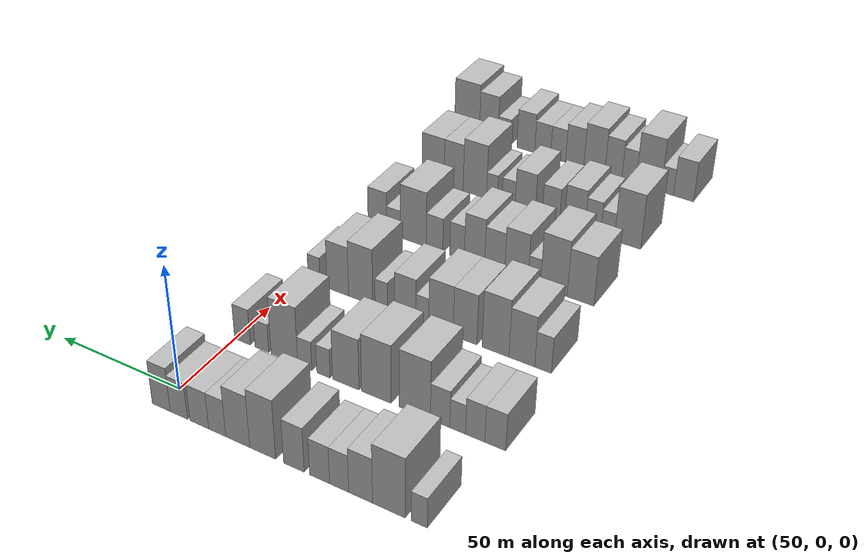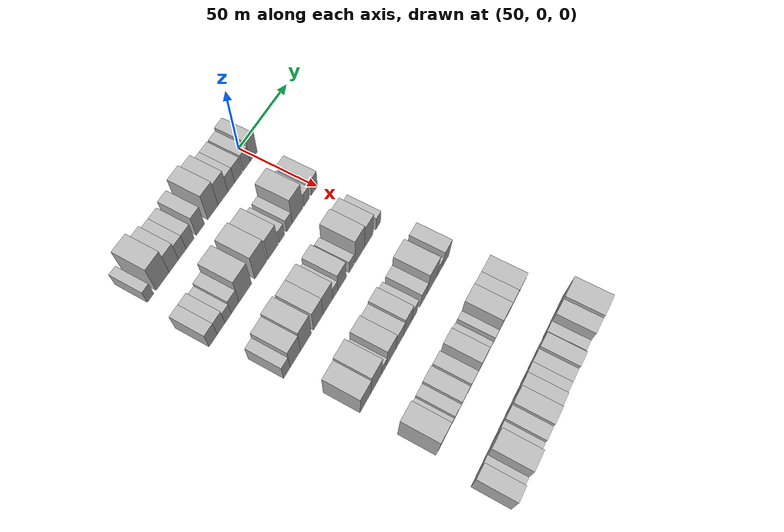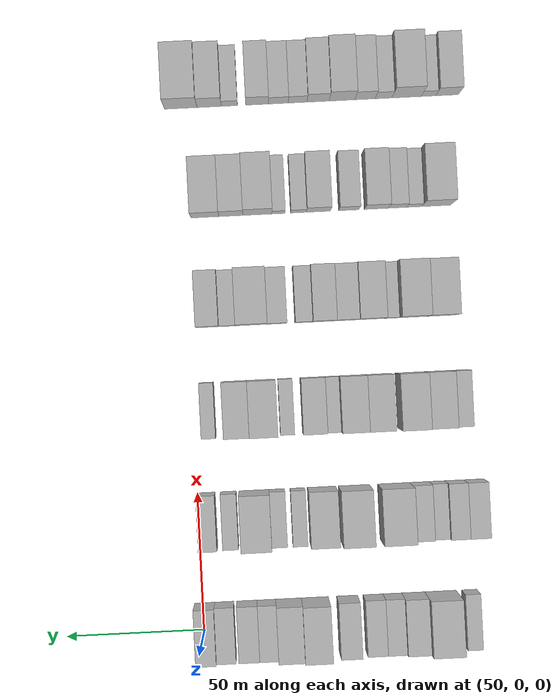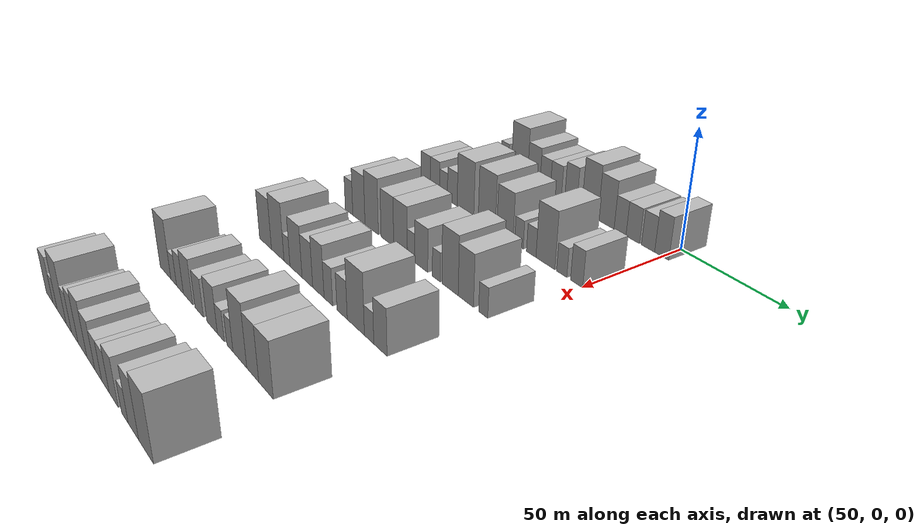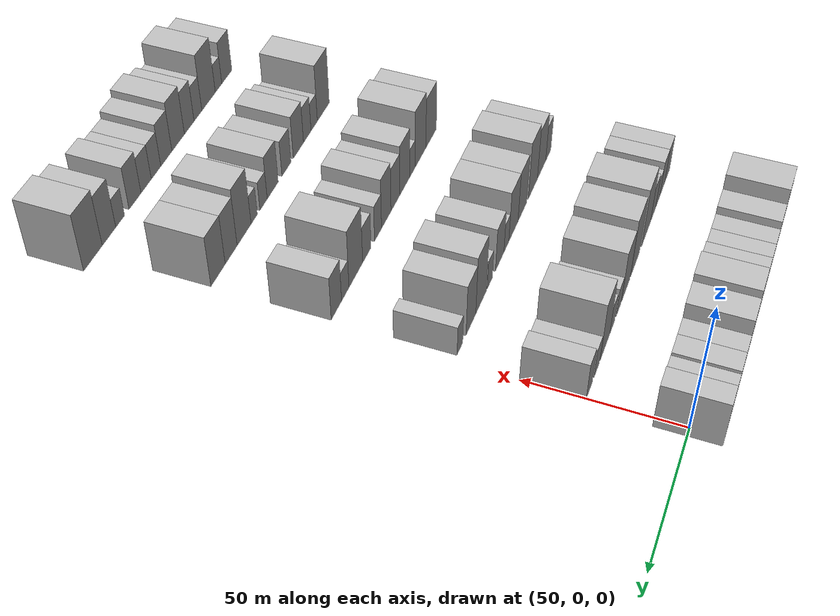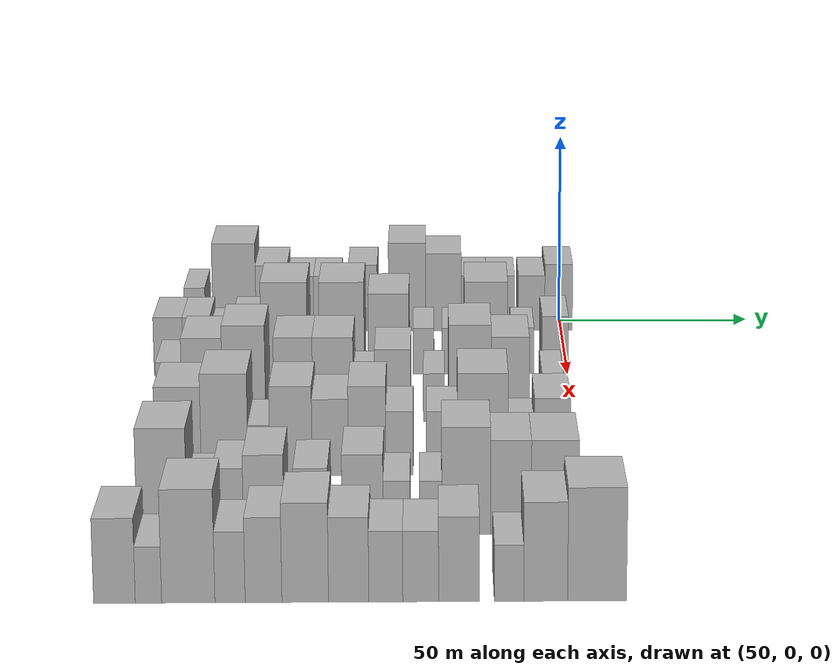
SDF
<sdf version="1.6">
 <world name="default">
  <model name="building_53">
   <static>1</static>
   <pose>50.0000 -96.8227 0 0.000000 0.000000 0.000000</pose>
   <link name="link">
    <pose>0 0 6.00 0 0 0</pose>
    <collision name="collision"><geometry><box><size>20.0000 5.5062 12.0000</size></box></geometry></collision>
    <visual name="visual">
     <cast_shadows>0</cast_shadows>
     <geometry><box><size>20.0000 5.5062 12.0000</size></box></geometry>
     <material>
      <script>
       <uri>model://HANNAS_wall/materials/scripts</uri>
       <uri>model://HANNAS_wall/materials/textures</uri>
       <name>vrc/HANNAS_wall</name>
      </script>
     </material>
    </visual>
   </link>
  </model>
  <model name="building_54">
   <static>1</static>
   <pose>50.0000 -86.3731 0 0.000000 0.000000 0.000000</pose>
   <link name="link">
    <pose>0 0 12.00 0 0 0</pose>
    <collision name="collision"><geometry><box><size>20.0000 11.3929 24.0000</size></box></geometry></collision>
    <visual name="visual">
     <cast_shadows>0</cast_shadows>
     <geometry><box><size>20.0000 11.3929 24.0000</size></box></geometry>
     <material>
      <script>
       <uri>model://HANNAS_wall/materials/scripts</uri>
       <uri>model://HANNAS_wall/materials/textures</uri>
       <name>vrc/HANNAS_wall</name>
      </script>
     </material>
    </visual>
   </link>
  </model>
  <model name="building_55">
   <static>1</static>
   <pose>50.0000 -76.4783 0 0.000000 0.000000 0.000000</pose>
   <link name="link">
    <pose>0 0 9.00 0 0 0</pose>
    <collision name="collision"><geometry><box><size>20.0000 8.3968 18.0000</size></box></geometry></collision>
    <visual name="visual">
     <cast_shadows>0</cast_shadows>
     <geometry><box><size>20.0000 8.3968 18.0000</size></box></geometry>
     <material>
      <script>
       <uri>model://HANNAS_wall/materials/scripts</uri>
       <uri>model://HANNAS_wall/materials/textures</uri>
       <name>vrc/HANNAS_wall</name>
      </script>
     </material>
    </visual>
   </link>
  </model>
  <model name="building_56">
   <static>1</static>
   <pose>50.0000 -68.8575 0 0.000000 0.000000 0.000000</pose>
   <link name="link">
    <pose>0 0 7.50 0 0 0</pose>
    <collision name="collision"><geometry><box><size>20.0000 6.8449 15.0000</size></box></geometry></collision>
    <visual name="visual">
     <cast_shadows>0</cast_shadows>
     <geometry><box><size>20.0000 6.8449 15.0000</size></box></geometry>
     <material>
      <script>
       <uri>model://HANNAS_wall/materials/scripts</uri>
       <uri>model://HANNAS_wall/materials/textures</uri>
       <name>vrc/HANNAS_wall</name>
      </script>
     </material>
    </visual>
   </link>
  </model>
  <model name="building_57">
   <static>1</static>
   <pose>50.0000 -61.8239 0 0.000000 0.000000 0.000000</pose>
   <link name="link">
    <pose>0 0 7.50 0 0 0</pose>
    <collision name="collision"><geometry><box><size>20.0000 7.2223 15.0000</size></box></geometry></collision>
    <visual name="visual">
     <cast_shadows>0</cast_shadows>
     <geometry><box><size>20.0000 7.2223 15.0000</size></box></geometry>
     <material>
      <script>
       <uri>model://HANNAS_wall/materials/scripts</uri>
       <uri>model://HANNAS_wall/materials/textures</uri>
       <name>vrc/HANNAS_wall</name>
      </script>
     </material>
    </visual>
   </link>
  </model>
  <model name="building_58">
   <static>1</static>
   <pose>50.0000 -52.3916 0 0.000000 0.000000 0.000000</pose>
   <link name="link">
    <pose>0 0 9.00 0 0 0</pose>
    <collision name="collision"><geometry><box><size>20.0000 7.6421 18.0000</size></box></geometry></collision>
    <visual name="visual">
     <cast_shadows>0</cast_shadows>
     <geometry><box><size>20.0000 7.6421 18.0000</size></box></geometry>
     <material>
      <script>
       <uri>model://HANNAS_wall/materials/scripts</uri>
       <uri>model://HANNAS_wall/materials/textures</uri>
       <name>vrc/HANNAS_wall</name>
      </script>
     </material>
    </visual>
   </link>
  </model>
  <model name="building_59">
   <static>1</static>
   <pose>50.0000 -40.6573 0 0.000000 0.000000 0.000000</pose>
   <link name="link">
    <pose>0 0 12.00 0 0 0</pose>
    <collision name="collision"><geometry><box><size>20.0000 9.8266 24.0000</size></box></geometry></collision>
    <visual name="visual">
     <cast_shadows>0</cast_shadows>
     <geometry><box><size>20.0000 9.8266 24.0000</size></box></geometry>
     <material>
      <script>
       <uri>model://HANNAS_wall/materials/scripts</uri>
       <uri>model://HANNAS_wall/materials/textures</uri>
       <name>vrc/HANNAS_wall</name>
      </script>
     </material>
    </visual>
   </link>
  </model>
  <model name="building_60">
   <static>1</static>
   <pose>50.0000 -31.0826 0 0.000000 0.000000 0.000000</pose>
   <link name="link">
    <pose>0 0 10.50 0 0 0</pose>
    <collision name="collision"><geometry><box><size>20.0000 9.3229 21.0000</size></box></geometry></collision>
    <visual name="visual">
     <cast_shadows>0</cast_shadows>
     <geometry><box><size>20.0000 9.3229 21.0000</size></box></geometry>
     <material>
      <script>
       <uri>model://HANNAS_wall/materials/scripts</uri>
       <uri>model://HANNAS_wall/materials/textures</uri>
       <name>vrc/HANNAS_wall</name>
      </script>
     </material>
    </visual>
   </link>
  </model>
  <model name="building_61">
   <static>1</static>
   <pose>50.0000 -23.0632 0 0.000000 0.000000 0.000000</pose>
   <link name="link">
    <pose>0 0 7.50 0 0 0</pose>
    <collision name="collision"><geometry><box><size>20.0000 6.7157 15.0000</size></box></geometry></collision>
    <visual name="visual">
     <cast_shadows>0</cast_shadows>
     <geometry><box><size>20.0000 6.7157 15.0000</size></box></geometry>
     <material>
      <script>
       <uri>model://HANNAS_wall/materials/scripts</uri>
       <uri>model://HANNAS_wall/materials/textures</uri>
       <name>vrc/HANNAS_wall</name>
      </script>
     </material>
    </visual>
   </link>
  </model>
  <model name="building_62">
   <static>1</static>
   <pose>50.0000 -15.9845 0 0.000000 0.000000 0.000000</pose>
   <link name="link">
    <pose>0 0 7.50 0 0 0</pose>
    <collision name="collision"><geometry><box><size>20.0000 7.4417 15.0000</size></box></geometry></collision>
    <visual name="visual">
     <cast_shadows>0</cast_shadows>
     <geometry><box><size>20.0000 7.4417 15.0000</size></box></geometry>
     <material>
      <script>
       <uri>model://HANNAS_wall/materials/scripts</uri>
       <uri>model://HANNAS_wall/materials/textures</uri>
       <name>vrc/HANNAS_wall</name>
      </script>
     </material>
    </visual>
   </link>
  </model>
  <model name="building_63">
   <static>1</static>
   <pose>50.0000 -7.7758 0 0.000000 0.000000 0.000000</pose>
   <link name="link">
    <pose>0 0 7.50 0 0 0</pose>
    <collision name="collision"><geometry><box><size>20.0000 6.9758 15.0000</size></box></geometry></collision>
    <visual name="visual">
     <cast_shadows>0</cast_shadows>
     <geometry><box><size>20.0000 6.9758 15.0000</size></box></geometry>
     <material>
      <script>
       <uri>model://HANNAS_wall/materials/scripts</uri>
       <uri>model://HANNAS_wall/materials/textures</uri>
       <name>vrc/HANNAS_wall</name>
      </script>
     </material>
    </visual>
   </link>
  </model>
  <model name="building_64">
   <static>1</static>
   <pose>50.0000 -0.6182 0 0.000000 0.000000 0.000000</pose>
   <link name="link">
    <pose>0 0 9.00 0 0 0</pose>
    <collision name="collision"><geometry><box><size>20.0000 7.3394 18.0000</size></box></geometry></collision>
    <visual name="visual">
     <cast_shadows>0</cast_shadows>
     <geometry><box><size>20.0000 7.3394 18.0000</size></box></geometry>
     <material>
      <script>
       <uri>model://HANNAS_wall/materials/scripts</uri>
       <uri>model://HANNAS_wall/materials/textures</uri>
       <name>vrc/HANNAS_wall</name>
      </script>
     </material>
    </visual>
   </link>
  </model>
  <model name="building_191">
   <static>1</static>
   <pose>90.0000 -100.3961 0 0.000000 0.000000 0.000000</pose>
   <link name="link">
    <pose>0 0 7.50 0 0 0</pose>
    <collision name="collision"><geometry><box><size>20.0000 7.2936 15.0000</size></box></geometry></collision>
    <visual name="visual">
     <cast_shadows>0</cast_shadows>
     <geometry><box><size>20.0000 7.2936 15.0000</size></box></geometry>
     <material>
      <script>
       <uri>model://HANNAS_wall/materials/scripts</uri>
       <uri>model://HANNAS_wall/materials/textures</uri>
       <name>vrc/HANNAS_wall</name>
      </script>
     </material>
    </visual>
   </link>
  </model>
  <model name="building_192">
   <static>1</static>
   <pose>90.0000 -93.2892 0 0.000000 0.000000 0.000000</pose>
   <link name="link">
    <pose>0 0 7.50 0 0 0</pose>
    <collision name="collision"><geometry><box><size>20.0000 6.9203 15.0000</size></box></geometry></collision>
    <visual name="visual">
     <cast_shadows>0</cast_shadows>
     <geometry><box><size>20.0000 6.9203 15.0000</size></box></geometry>
     <material>
      <script>
       <uri>model://HANNAS_wall/materials/scripts</uri>
       <uri>model://HANNAS_wall/materials/textures</uri>
       <name>vrc/HANNAS_wall</name>
      </script>
     </material>
    </visual>
   </link>
  </model>
  <model name="building_193">
   <static>1</static>
   <pose>90.0000 -86.9878 0 0.000000 0.000000 0.000000</pose>
   <link name="link">
    <pose>0 0 6.00 0 0 0</pose>
    <collision name="collision"><geometry><box><size>20.0000 5.6826 12.0000</size></box></geometry></collision>
    <visual name="visual">
     <cast_shadows>0</cast_shadows>
     <geometry><box><size>20.0000 5.6826 12.0000</size></box></geometry>
     <material>
      <script>
       <uri>model://HANNAS_wall/materials/scripts</uri>
       <uri>model://HANNAS_wall/materials/textures</uri>
       <name>vrc/HANNAS_wall</name>
      </script>
     </material>
    </visual>
   </link>
  </model>
  <model name="building_194">
   <static>1</static>
   <pose>90.0000 -80.6133 0 0.000000 0.000000 0.000000</pose>
   <link name="link">
    <pose>0 0 7.50 0 0 0</pose>
    <collision name="collision"><geometry><box><size>20.0000 7.0664 15.0000</size></box></geometry></collision>
    <visual name="visual">
     <cast_shadows>0</cast_shadows>
     <geometry><box><size>20.0000 7.0664 15.0000</size></box></geometry>
     <material>
      <script>
       <uri>model://HANNAS_wall/materials/scripts</uri>
       <uri>model://HANNAS_wall/materials/textures</uri>
       <name>vrc/HANNAS_wall</name>
      </script>
     </material>
    </visual>
   </link>
  </model>
  <model name="building_195">
   <static>1</static>
   <pose>90.0000 -71.2596 0 0.000000 0.000000 0.000000</pose>
   <link name="link">
    <pose>0 0 12.00 0 0 0</pose>
    <collision name="collision"><geometry><box><size>20.0000 11.6409 24.0000</size></box></geometry></collision>
    <visual name="visual">
     <cast_shadows>0</cast_shadows>
     <geometry><box><size>20.0000 11.6409 24.0000</size></box></geometry>
     <material>
      <script>
       <uri>model://HANNAS_wall/materials/scripts</uri>
       <uri>model://HANNAS_wall/materials/textures</uri>
       <name>vrc/HANNAS_wall</name>
      </script>
     </material>
    </visual>
   </link>
  </model>
  <model name="building_196">
   <static>1</static>
   <pose>90.0000 -56.7909 0 0.000000 0.000000 0.000000</pose>
   <link name="link">
    <pose>0 0 12.00 0 0 0</pose>
    <collision name="collision"><geometry><box><size>20.0000 11.2966 24.0000</size></box></geometry></collision>
    <visual name="visual">
     <cast_shadows>0</cast_shadows>
     <geometry><box><size>20.0000 11.2966 24.0000</size></box></geometry>
     <material>
      <script>
       <uri>model://HANNAS_wall/materials/scripts</uri>
       <uri>model://HANNAS_wall/materials/textures</uri>
       <name>vrc/HANNAS_wall</name>
      </script>
     </material>
    </visual>
   </link>
  </model>
  <model name="building_197">
   <static>1</static>
   <pose>90.0000 -45.0088 0 0.000000 0.000000 0.000000</pose>
   <link name="link">
    <pose>0 0 10.50 0 0 0</pose>
    <collision name="collision"><geometry><box><size>20.0000 10.2676 21.0000</size></box></geometry></collision>
    <visual name="visual">
     <cast_shadows>0</cast_shadows>
     <geometry><box><size>20.0000 10.2676 21.0000</size></box></geometry>
     <material>
      <script>
       <uri>model://HANNAS_wall/materials/scripts</uri>
       <uri>model://HANNAS_wall/materials/textures</uri>
       <name>vrc/HANNAS_wall</name>
      </script>
     </material>
    </visual>
   </link>
  </model>
  <model name="building_198">
   <static>1</static>
   <pose>90.0000 -36.2347 0 0.000000 0.000000 0.000000</pose>
   <link name="link">
    <pose>0 0 6.00 0 0 0</pose>
    <collision name="collision"><geometry><box><size>20.0000 5.2806 12.0000</size></box></geometry></collision>
    <visual name="visual">
     <cast_shadows>0</cast_shadows>
     <geometry><box><size>20.0000 5.2806 12.0000</size></box></geometry>
     <material>
      <script>
       <uri>model://HANNAS_wall/materials/scripts</uri>
       <uri>model://HANNAS_wall/materials/textures</uri>
       <name>vrc/HANNAS_wall</name>
      </script>
     </material>
    </visual>
   </link>
  </model>
  <model name="building_199">
   <static>1</static>
   <pose>90.0000 -28.7729 0 0.000000 0.000000 0.000000</pose>
   <link name="link">
    <pose>0 0 6.00 0 0 0</pose>
    <collision name="collision"><geometry><box><size>20.0000 5.6430 12.0000</size></box></geometry></collision>
    <visual name="visual">
     <cast_shadows>0</cast_shadows>
     <geometry><box><size>20.0000 5.6430 12.0000</size></box></geometry>
     <material>
      <script>
       <uri>model://HANNAS_wall/materials/scripts</uri>
       <uri>model://HANNAS_wall/materials/textures</uri>
       <name>vrc/HANNAS_wall</name>
      </script>
     </material>
    </visual>
   </link>
  </model>
  <model name="building_200">
   <static>1</static>
   <pose>90.0000 -20.5035 0 0.000000 0.000000 0.000000</pose>
   <link name="link">
    <pose>0 0 12.00 0 0 0</pose>
    <collision name="collision"><geometry><box><size>20.0000 10.8959 24.0000</size></box></geometry></collision>
    <visual name="visual">
     <cast_shadows>0</cast_shadows>
     <geometry><box><size>20.0000 10.8959 24.0000</size></box></geometry>
     <material>
      <script>
       <uri>model://HANNAS_wall/materials/scripts</uri>
       <uri>model://HANNAS_wall/materials/textures</uri>
       <name>vrc/HANNAS_wall</name>
      </script>
     </material>
    </visual>
   </link>
  </model>
  <model name="building_201">
   <static>1</static>
   <pose>90.0000 -11.2174 0 0.000000 0.000000 0.000000</pose>
   <link name="link">
    <pose>0 0 6.00 0 0 0</pose>
    <collision name="collision"><geometry><box><size>20.0000 5.6763 12.0000</size></box></geometry></collision>
    <visual name="visual">
     <cast_shadows>0</cast_shadows>
     <geometry><box><size>20.0000 5.6763 12.0000</size></box></geometry>
     <material>
      <script>
       <uri>model://HANNAS_wall/materials/scripts</uri>
       <uri>model://HANNAS_wall/materials/textures</uri>
       <name>vrc/HANNAS_wall</name>
      </script>
     </material>
    </visual>
   </link>
  </model>
  <model name="building_202">
   <static>1</static>
   <pose>90.0000 -3.0794 0 0.000000 0.000000 0.000000</pose>
   <link name="link">
    <pose>0 0 7.50 0 0 0</pose>
    <collision name="collision"><geometry><box><size>20.0000 6.5996 15.0000</size></box></geometry></collision>
    <visual name="visual">
     <cast_shadows>0</cast_shadows>
     <geometry><box><size>20.0000 6.5996 15.0000</size></box></geometry>
     <material>
      <script>
       <uri>model://HANNAS_wall/materials/scripts</uri>
       <uri>model://HANNAS_wall/materials/textures</uri>
       <name>vrc/HANNAS_wall</name>
      </script>
     </material>
    </visual>
   </link>
  </model>
  <model name="building_331">
   <static>1</static>
   <pose>130.0000 -96.8063 0 0.000000 0.000000 0.000000</pose>
   <link name="link">
    <pose>0 0 7.50 0 0 0</pose>
    <collision name="collision"><geometry><box><size>20.0000 6.1383 15.0000</size></box></geometry></collision>
    <visual name="visual">
     <cast_shadows>0</cast_shadows>
     <geometry><box><size>20.0000 6.1383 15.0000</size></box></geometry>
     <material>
      <script>
       <uri>model://HANNAS_wall/materials/scripts</uri>
       <uri>model://HANNAS_wall/materials/textures</uri>
       <name>vrc/HANNAS_wall</name>
      </script>
     </material>
    </visual>
   </link>
  </model>
  <model name="building_332">
   <static>1</static>
   <pose>130.0000 -88.9052 0 0.000000 0.000000 0.000000</pose>
   <link name="link">
    <pose>0 0 10.50 0 0 0</pose>
    <collision name="collision"><geometry><box><size>20.0000 9.6639 21.0000</size></box></geometry></collision>
    <visual name="visual">
     <cast_shadows>0</cast_shadows>
     <geometry><box><size>20.0000 9.6639 21.0000</size></box></geometry>
     <material>
      <script>
       <uri>model://HANNAS_wall/materials/scripts</uri>
       <uri>model://HANNAS_wall/materials/textures</uri>
       <name>vrc/HANNAS_wall</name>
      </script>
     </material>
    </visual>
   </link>
  </model>
  <model name="building_333">
   <static>1</static>
   <pose>130.0000 -78.9451 0 0.000000 0.000000 0.000000</pose>
   <link name="link">
    <pose>0 0 12.00 0 0 0</pose>
    <collision name="collision"><geometry><box><size>20.0000 10.2561 24.0000</size></box></geometry></collision>
    <visual name="visual">
     <cast_shadows>0</cast_shadows>
     <geometry><box><size>20.0000 10.2561 24.0000</size></box></geometry>
     <material>
      <script>
       <uri>model://HANNAS_wall/materials/scripts</uri>
       <uri>model://HANNAS_wall/materials/textures</uri>
       <name>vrc/HANNAS_wall</name>
      </script>
     </material>
    </visual>
   </link>
  </model>
  <model name="building_334">
   <static>1</static>
   <pose>130.0000 -67.1967 0 0.000000 0.000000 0.000000</pose>
   <link name="link">
    <pose>0 0 10.50 0 0 0</pose>
    <collision name="collision"><geometry><box><size>20.0000 9.2408 21.0000</size></box></geometry></collision>
    <visual name="visual">
     <cast_shadows>0</cast_shadows>
     <geometry><box><size>20.0000 9.2408 21.0000</size></box></geometry>
     <material>
      <script>
       <uri>model://HANNAS_wall/materials/scripts</uri>
       <uri>model://HANNAS_wall/materials/textures</uri>
       <name>vrc/HANNAS_wall</name>
      </script>
     </material>
    </visual>
   </link>
  </model>
  <model name="building_335">
   <static>1</static>
   <pose>130.0000 -57.7162 0 0.000000 0.000000 0.000000</pose>
   <link name="link">
    <pose>0 0 10.50 0 0 0</pose>
    <collision name="collision"><geometry><box><size>20.0000 9.7201 21.0000</size></box></geometry></collision>
    <visual name="visual">
     <cast_shadows>0</cast_shadows>
     <geometry><box><size>20.0000 9.7201 21.0000</size></box></geometry>
     <material>
      <script>
       <uri>model://HANNAS_wall/materials/scripts</uri>
       <uri>model://HANNAS_wall/materials/textures</uri>
       <name>vrc/HANNAS_wall</name>
      </script>
     </material>
    </visual>
   </link>
  </model>
  <model name="building_336">
   <static>1</static>
   <pose>130.0000 -50.3081 0 0.000000 0.000000 0.000000</pose>
   <link name="link">
    <pose>0 0 6.00 0 0 0</pose>
    <collision name="collision"><geometry><box><size>20.0000 5.0960 12.0000</size></box></geometry></collision>
    <visual name="visual">
     <cast_shadows>0</cast_shadows>
     <geometry><box><size>20.0000 5.0960 12.0000</size></box></geometry>
     <material>
      <script>
       <uri>model://HANNAS_wall/materials/scripts</uri>
       <uri>model://HANNAS_wall/materials/textures</uri>
       <name>vrc/HANNAS_wall</name>
      </script>
     </material>
    </visual>
   </link>
  </model>
  <model name="building_337">
   <static>1</static>
   <pose>130.0000 -43.4453 0 0.000000 0.000000 0.000000</pose>
   <link name="link">
    <pose>0 0 9.00 0 0 0</pose>
    <collision name="collision"><geometry><box><size>20.0000 8.6297 18.0000</size></box></geometry></collision>
    <visual name="visual">
     <cast_shadows>0</cast_shadows>
     <geometry><box><size>20.0000 8.6297 18.0000</size></box></geometry>
     <material>
      <script>
       <uri>model://HANNAS_wall/materials/scripts</uri>
       <uri>model://HANNAS_wall/materials/textures</uri>
       <name>vrc/HANNAS_wall</name>
      </script>
     </material>
    </visual>
   </link>
  </model>
  <model name="building_338">
   <static>1</static>
   <pose>130.0000 -33.5901 0 0.000000 0.000000 0.000000</pose>
   <link name="link">
    <pose>0 0 6.00 0 0 0</pose>
    <collision name="collision"><geometry><box><size>20.0000 5.0807 12.0000</size></box></geometry></collision>
    <visual name="visual">
     <cast_shadows>0</cast_shadows>
     <geometry><box><size>20.0000 5.0807 12.0000</size></box></geometry>
     <material>
      <script>
       <uri>model://HANNAS_wall/materials/scripts</uri>
       <uri>model://HANNAS_wall/materials/textures</uri>
       <name>vrc/HANNAS_wall</name>
      </script>
     </material>
    </visual>
   </link>
  </model>
  <model name="building_339">
   <static>1</static>
   <pose>130.0000 -24.9870 0 0.000000 0.000000 0.000000</pose>
   <link name="link">
    <pose>0 0 12.00 0 0 0</pose>
    <collision name="collision"><geometry><box><size>20.0000 10.1255 24.0000</size></box></geometry></collision>
    <visual name="visual">
     <cast_shadows>0</cast_shadows>
     <geometry><box><size>20.0000 10.1255 24.0000</size></box></geometry>
     <material>
      <script>
       <uri>model://HANNAS_wall/materials/scripts</uri>
       <uri>model://HANNAS_wall/materials/textures</uri>
       <name>vrc/HANNAS_wall</name>
      </script>
     </material>
    </visual>
   </link>
  </model>
  <model name="building_340">
   <static>1</static>
   <pose>130.0000 -15.3631 0 0.000000 0.000000 0.000000</pose>
   <link name="link">
    <pose>0 0 10.50 0 0 0</pose>
    <collision name="collision"><geometry><box><size>20.0000 9.1222 21.0000</size></box></geometry></collision>
    <visual name="visual">
     <cast_shadows>0</cast_shadows>
     <geometry><box><size>20.0000 9.1222 21.0000</size></box></geometry>
     <material>
      <script>
       <uri>model://HANNAS_wall/materials/scripts</uri>
       <uri>model://HANNAS_wall/materials/textures</uri>
       <name>vrc/HANNAS_wall</name>
      </script>
     </material>
    </visual>
   </link>
  </model>
  <model name="building_341">
   <static>1</static>
   <pose>130.0000 -5.2244 0 0.000000 0.000000 0.000000</pose>
   <link name="link">
    <pose>0 0 6.00 0 0 0</pose>
    <collision name="collision"><geometry><box><size>20.0000 5.1553 12.0000</size></box></geometry></collision>
    <visual name="visual">
     <cast_shadows>0</cast_shadows>
     <geometry><box><size>20.0000 5.1553 12.0000</size></box></geometry>
     <material>
      <script>
       <uri>model://HANNAS_wall/materials/scripts</uri>
       <uri>model://HANNAS_wall/materials/textures</uri>
       <name>vrc/HANNAS_wall</name>
      </script>
     </material>
    </visual>
   </link>
  </model>
  <model name="building_473">
   <static>1</static>
   <pose>170.0000 -91.4179 0 0.000000 0.000000 0.000000</pose>
   <link name="link">
    <pose>0 0 10.50 0 0 0</pose>
    <collision name="collision"><geometry><box><size>20.0000 10.4320 21.0000</size></box></geometry></collision>
    <visual name="visual">
     <cast_shadows>0</cast_shadows>
     <geometry><box><size>20.0000 10.4320 21.0000</size></box></geometry>
     <material>
      <script>
       <uri>model://HANNAS_wall/materials/scripts</uri>
       <uri>model://HANNAS_wall/materials/textures</uri>
       <name>vrc/HANNAS_wall</name>
      </script>
     </material>
    </visual>
   </link>
  </model>
  <model name="building_474">
   <static>1</static>
   <pose>170.0000 -80.9044 0 0.000000 0.000000 0.000000</pose>
   <link name="link">
    <pose>0 0 12.00 0 0 0</pose>
    <collision name="collision"><geometry><box><size>20.0000 10.5949 24.0000</size></box></geometry></collision>
    <visual name="visual">
     <cast_shadows>0</cast_shadows>
     <geometry><box><size>20.0000 10.5949 24.0000</size></box></geometry>
     <material>
      <script>
       <uri>model://HANNAS_wall/materials/scripts</uri>
       <uri>model://HANNAS_wall/materials/textures</uri>
       <name>vrc/HANNAS_wall</name>
      </script>
     </material>
    </visual>
   </link>
  </model>
  <model name="building_475">
   <static>1</static>
   <pose>170.0000 -73.1495 0 0.000000 0.000000 0.000000</pose>
   <link name="link">
    <pose>0 0 6.00 0 0 0</pose>
    <collision name="collision"><geometry><box><size>20.0000 4.9149 12.0000</size></box></geometry></collision>
    <visual name="visual">
     <cast_shadows>0</cast_shadows>
     <geometry><box><size>20.0000 4.9149 12.0000</size></box></geometry>
     <material>
      <script>
       <uri>model://HANNAS_wall/materials/scripts</uri>
       <uri>model://HANNAS_wall/materials/textures</uri>
       <name>vrc/HANNAS_wall</name>
      </script>
     </material>
    </visual>
   </link>
  </model>
  <model name="building_476">
   <static>1</static>
   <pose>170.0000 -65.9115 0 0.000000 0.000000 0.000000</pose>
   <link name="link">
    <pose>0 0 10.50 0 0 0</pose>
    <collision name="collision"><geometry><box><size>20.0000 9.5612 21.0000</size></box></geometry></collision>
    <visual name="visual">
     <cast_shadows>0</cast_shadows>
     <geometry><box><size>20.0000 9.5612 21.0000</size></box></geometry>
     <material>
      <script>
       <uri>model://HANNAS_wall/materials/scripts</uri>
       <uri>model://HANNAS_wall/materials/textures</uri>
       <name>vrc/HANNAS_wall</name>
      </script>
     </material>
    </visual>
   </link>
  </model>
  <model name="building_477">
   <static>1</static>
   <pose>170.0000 -57.0385 0 0.000000 0.000000 0.000000</pose>
   <link name="link">
    <pose>0 0 9.00 0 0 0</pose>
    <collision name="collision"><geometry><box><size>20.0000 8.1847 18.0000</size></box></geometry></collision>
    <visual name="visual">
     <cast_shadows>0</cast_shadows>
     <geometry><box><size>20.0000 8.1847 18.0000</size></box></geometry>
     <material>
      <script>
       <uri>model://HANNAS_wall/materials/scripts</uri>
       <uri>model://HANNAS_wall/materials/textures</uri>
       <name>vrc/HANNAS_wall</name>
      </script>
     </material>
    </visual>
   </link>
  </model>
  <model name="building_478">
   <static>1</static>
   <pose>170.0000 -48.7100 0 0.000000 0.000000 0.000000</pose>
   <link name="link">
    <pose>0 0 10.50 0 0 0</pose>
    <collision name="collision"><geometry><box><size>20.0000 8.4723 21.0000</size></box></geometry></collision>
    <visual name="visual">
     <cast_shadows>0</cast_shadows>
     <geometry><box><size>20.0000 8.4723 21.0000</size></box></geometry>
     <material>
      <script>
       <uri>model://HANNAS_wall/materials/scripts</uri>
       <uri>model://HANNAS_wall/materials/textures</uri>
       <name>vrc/HANNAS_wall</name>
      </script>
     </material>
    </visual>
   </link>
  </model>
  <model name="building_479">
   <static>1</static>
   <pose>170.0000 -41.3929 0 0.000000 0.000000 0.000000</pose>
   <link name="link">
    <pose>0 0 7.50 0 0 0</pose>
    <collision name="collision"><geometry><box><size>20.0000 6.1620 15.0000</size></box></geometry></collision>
    <visual name="visual">
     <cast_shadows>0</cast_shadows>
     <geometry><box><size>20.0000 6.1620 15.0000</size></box></geometry>
     <material>
      <script>
       <uri>model://HANNAS_wall/materials/scripts</uri>
       <uri>model://HANNAS_wall/materials/textures</uri>
       <name>vrc/HANNAS_wall</name>
      </script>
     </material>
    </visual>
   </link>
  </model>
  <model name="building_480">
   <static>1</static>
   <pose>170.0000 -31.7530 0 0.000000 0.000000 0.000000</pose>
   <link name="link">
    <pose>0 0 7.50 0 0 0</pose>
    <collision name="collision"><geometry><box><size>20.0000 7.1179 15.0000</size></box></geometry></collision>
    <visual name="visual">
     <cast_shadows>0</cast_shadows>
     <geometry><box><size>20.0000 7.1179 15.0000</size></box></geometry>
     <material>
      <script>
       <uri>model://HANNAS_wall/materials/scripts</uri>
       <uri>model://HANNAS_wall/materials/textures</uri>
       <name>vrc/HANNAS_wall</name>
      </script>
     </material>
    </visual>
   </link>
  </model>
  <model name="building_481">
   <static>1</static>
   <pose>170.0000 -22.5160 0 0.000000 0.000000 0.000000</pose>
   <link name="link">
    <pose>0 0 12.00 0 0 0</pose>
    <collision name="collision"><geometry><box><size>20.0000 11.3559 24.0000</size></box></geometry></collision>
    <visual name="visual">
     <cast_shadows>0</cast_shadows>
     <geometry><box><size>20.0000 11.3559 24.0000</size></box></geometry>
     <material>
      <script>
       <uri>model://HANNAS_wall/materials/scripts</uri>
       <uri>model://HANNAS_wall/materials/textures</uri>
       <name>vrc/HANNAS_wall</name>
      </script>
     </material>
    </visual>
   </link>
  </model>
  <model name="building_482">
   <static>1</static>
   <pose>170.0000 -13.8479 0 0.000000 0.000000 0.000000</pose>
   <link name="link">
    <pose>0 0 6.00 0 0 0</pose>
    <collision name="collision"><geometry><box><size>20.0000 5.9803 12.0000</size></box></geometry></collision>
    <visual name="visual">
     <cast_shadows>0</cast_shadows>
     <geometry><box><size>20.0000 5.9803 12.0000</size></box></geometry>
     <material>
      <script>
       <uri>model://HANNAS_wall/materials/scripts</uri>
       <uri>model://HANNAS_wall/materials/textures</uri>
       <name>vrc/HANNAS_wall</name>
      </script>
     </material>
    </visual>
   </link>
  </model>
  <model name="building_483">
   <static>1</static>
   <pose>170.0000 -6.7599 0 0.000000 0.000000 0.000000</pose>
   <link name="link">
    <pose>0 0 9.00 0 0 0</pose>
    <collision name="collision"><geometry><box><size>20.0000 8.1957 18.0000</size></box></geometry></collision>
    <visual name="visual">
     <cast_shadows>0</cast_shadows>
     <geometry><box><size>20.0000 8.1957 18.0000</size></box></geometry>
     <material>
      <script>
       <uri>model://HANNAS_wall/materials/scripts</uri>
       <uri>model://HANNAS_wall/materials/textures</uri>
       <name>vrc/HANNAS_wall</name>
      </script>
     </material>
    </visual>
   </link>
  </model>
  <model name="building_612">
   <static>1</static>
   <pose>210.0000 -91.6116 0 0.000000 0.000000 0.000000</pose>
   <link name="link">
    <pose>0 0 12.00 0 0 0</pose>
    <collision name="collision"><geometry><box><size>20.0000 10.6897 24.0000</size></box></geometry></collision>
    <visual name="visual">
     <cast_shadows>0</cast_shadows>
     <geometry><box><size>20.0000 10.6897 24.0000</size></box></geometry>
     <material>
      <script>
       <uri>model://HANNAS_wall/materials/scripts</uri>
       <uri>model://HANNAS_wall/materials/textures</uri>
       <name>vrc/HANNAS_wall</name>
      </script>
     </material>
    </visual>
   </link>
  </model>
  <model name="building_613">
   <static>1</static>
   <pose>210.0000 -83.5062 0 0.000000 0.000000 0.000000</pose>
   <link name="link">
    <pose>0 0 6.00 0 0 0</pose>
    <collision name="collision"><geometry><box><size>20.0000 5.5212 12.0000</size></box></geometry></collision>
    <visual name="visual">
     <cast_shadows>0</cast_shadows>
     <geometry><box><size>20.0000 5.5212 12.0000</size></box></geometry>
     <material>
      <script>
       <uri>model://HANNAS_wall/materials/scripts</uri>
       <uri>model://HANNAS_wall/materials/textures</uri>
       <name>vrc/HANNAS_wall</name>
      </script>
     </material>
    </visual>
   </link>
  </model>
  <model name="building_614">
   <static>1</static>
   <pose>210.0000 -77.4925 0 0.000000 0.000000 0.000000</pose>
   <link name="link">
    <pose>0 0 7.50 0 0 0</pose>
    <collision name="collision"><geometry><box><size>20.0000 6.5060 15.0000</size></box></geometry></collision>
    <visual name="visual">
     <cast_shadows>0</cast_shadows>
     <geometry><box><size>20.0000 6.5060 15.0000</size></box></geometry>
     <material>
      <script>
       <uri>model://HANNAS_wall/materials/scripts</uri>
       <uri>model://HANNAS_wall/materials/textures</uri>
       <name>vrc/HANNAS_wall</name>
      </script>
     </material>
    </visual>
   </link>
  </model>
  <model name="building_615">
   <static>1</static>
   <pose>210.0000 -69.9156 0 0.000000 0.000000 0.000000</pose>
   <link name="link">
    <pose>0 0 9.00 0 0 0</pose>
    <collision name="collision"><geometry><box><size>20.0000 8.6477 18.0000</size></box></geometry></collision>
    <visual name="visual">
     <cast_shadows>0</cast_shadows>
     <geometry><box><size>20.0000 8.6477 18.0000</size></box></geometry>
     <material>
      <script>
       <uri>model://HANNAS_wall/materials/scripts</uri>
       <uri>model://HANNAS_wall/materials/textures</uri>
       <name>vrc/HANNAS_wall</name>
      </script>
     </material>
    </visual>
   </link>
  </model>
  <model name="building_616">
   <static>1</static>
   <pose>210.0000 -59.9013 0 0.000000 0.000000 0.000000</pose>
   <link name="link">
    <pose>0 0 7.50 0 0 0</pose>
    <collision name="collision"><geometry><box><size>20.0000 7.3810 15.0000</size></box></geometry></collision>
    <visual name="visual">
     <cast_shadows>0</cast_shadows>
     <geometry><box><size>20.0000 7.3810 15.0000</size></box></geometry>
     <material>
      <script>
       <uri>model://HANNAS_wall/materials/scripts</uri>
       <uri>model://HANNAS_wall/materials/textures</uri>
       <name>vrc/HANNAS_wall</name>
      </script>
     </material>
    </visual>
   </link>
  </model>
  <model name="building_617">
   <static>1</static>
   <pose>210.0000 -48.8155 0 0.000000 0.000000 0.000000</pose>
   <link name="link">
    <pose>0 0 9.00 0 0 0</pose>
    <collision name="collision"><geometry><box><size>20.0000 8.7907 18.0000</size></box></geometry></collision>
    <visual name="visual">
     <cast_shadows>0</cast_shadows>
     <geometry><box><size>20.0000 8.7907 18.0000</size></box></geometry>
     <material>
      <script>
       <uri>model://HANNAS_wall/materials/scripts</uri>
       <uri>model://HANNAS_wall/materials/textures</uri>
       <name>vrc/HANNAS_wall</name>
      </script>
     </material>
    </visual>
   </link>
  </model>
  <model name="building_618">
   <static>1</static>
   <pose>210.0000 -41.5669 0 0.000000 0.000000 0.000000</pose>
   <link name="link">
    <pose>0 0 6.00 0 0 0</pose>
    <collision name="collision"><geometry><box><size>20.0000 5.7063 12.0000</size></box></geometry></collision>
    <visual name="visual">
     <cast_shadows>0</cast_shadows>
     <geometry><box><size>20.0000 5.7063 12.0000</size></box></geometry>
     <material>
      <script>
       <uri>model://HANNAS_wall/materials/scripts</uri>
       <uri>model://HANNAS_wall/materials/textures</uri>
       <name>vrc/HANNAS_wall</name>
      </script>
     </material>
    </visual>
   </link>
  </model>
  <model name="building_619">
   <static>1</static>
   <pose>210.0000 -34.3137 0 0.000000 0.000000 0.000000</pose>
   <link name="link">
    <pose>0 0 6.00 0 0 0</pose>
    <collision name="collision"><geometry><box><size>20.0000 4.8002 12.0000</size></box></geometry></collision>
    <visual name="visual">
     <cast_shadows>0</cast_shadows>
     <geometry><box><size>20.0000 4.8002 12.0000</size></box></geometry>
     <material>
      <script>
       <uri>model://HANNAS_wall/materials/scripts</uri>
       <uri>model://HANNAS_wall/materials/textures</uri>
       <name>vrc/HANNAS_wall</name>
      </script>
     </material>
    </visual>
   </link>
  </model>
  <model name="building_620">
   <static>1</static>
   <pose>210.0000 -26.6943 0 0.000000 0.000000 0.000000</pose>
   <link name="link">
    <pose>0 0 12.00 0 0 0</pose>
    <collision name="collision"><geometry><box><size>20.0000 10.4387 24.0000</size></box></geometry></collision>
    <visual name="visual">
     <cast_shadows>0</cast_shadows>
     <geometry><box><size>20.0000 10.4387 24.0000</size></box></geometry>
     <material>
      <script>
       <uri>model://HANNAS_wall/materials/scripts</uri>
       <uri>model://HANNAS_wall/materials/textures</uri>
       <name>vrc/HANNAS_wall</name>
      </script>
     </material>
    </visual>
   </link>
  </model>
  <model name="building_621">
   <static>1</static>
   <pose>210.0000 -17.1238 0 0.000000 0.000000 0.000000</pose>
   <link name="link">
    <pose>0 0 10.50 0 0 0</pose>
    <collision name="collision"><geometry><box><size>20.0000 8.7022 21.0000</size></box></geometry></collision>
    <visual name="visual">
     <cast_shadows>0</cast_shadows>
     <geometry><box><size>20.0000 8.7022 21.0000</size></box></geometry>
     <material>
      <script>
       <uri>model://HANNAS_wall/materials/scripts</uri>
       <uri>model://HANNAS_wall/materials/textures</uri>
       <name>vrc/HANNAS_wall</name>
      </script>
     </material>
    </visual>
   </link>
  </model>
  <model name="building_622">
   <static>1</static>
   <pose>210.0000 -7.7076 0 0.000000 0.000000 0.000000</pose>
   <link name="link">
    <pose>0 0 10.50 0 0 0</pose>
    <collision name="collision"><geometry><box><size>20.0000 10.1302 21.0000</size></box></geometry></collision>
    <visual name="visual">
     <cast_shadows>0</cast_shadows>
     <geometry><box><size>20.0000 10.1302 21.0000</size></box></geometry>
     <material>
      <script>
       <uri>model://HANNAS_wall/materials/scripts</uri>
       <uri>model://HANNAS_wall/materials/textures</uri>
       <name>vrc/HANNAS_wall</name>
      </script>
     </material>
    </visual>
   </link>
  </model>
  <model name="building_754">
   <static>1</static>
   <pose>250.0000 -97.6773 0 0.000000 0.000000 0.000000</pose>
   <link name="link">
    <pose>0 0 9.00 0 0 0</pose>
    <collision name="collision"><geometry><box><size>20.0000 8.3383 18.0000</size></box></geometry></collision>
    <visual name="visual">
     <cast_shadows>0</cast_shadows>
     <geometry><box><size>20.0000 8.3383 18.0000</size></box></geometry>
     <material>
      <script>
       <uri>model://HANNAS_wall/materials/scripts</uri>
       <uri>model://HANNAS_wall/materials/textures</uri>
       <name>vrc/HANNAS_wall</name>
      </script>
     </material>
    </visual>
   </link>
  </model>
  <model name="building_755">
   <static>1</static>
   <pose>250.0000 -90.8736 0 0.000000 0.000000 0.000000</pose>
   <link name="link">
    <pose>0 0 6.00 0 0 0</pose>
    <collision name="collision"><geometry><box><size>20.0000 5.2690 12.0000</size></box></geometry></collision>
    <visual name="visual">
     <cast_shadows>0</cast_shadows>
     <geometry><box><size>20.0000 5.2690 12.0000</size></box></geometry>
     <material>
      <script>
       <uri>model://HANNAS_wall/materials/scripts</uri>
       <uri>model://HANNAS_wall/materials/textures</uri>
       <name>vrc/HANNAS_wall</name>
      </script>
     </material>
    </visual>
   </link>
  </model>
  <model name="building_756">
   <static>1</static>
   <pose>250.0000 -82.8968 0 0.000000 0.000000 0.000000</pose>
   <link name="link">
    <pose>0 0 12.00 0 0 0</pose>
    <collision name="collision"><geometry><box><size>20.0000 10.6847 24.0000</size></box></geometry></collision>
    <visual name="visual">
     <cast_shadows>0</cast_shadows>
     <geometry><box><size>20.0000 10.6847 24.0000</size></box></geometry>
     <material>
      <script>
       <uri>model://HANNAS_wall/materials/scripts</uri>
       <uri>model://HANNAS_wall/materials/textures</uri>
       <name>vrc/HANNAS_wall</name>
      </script>
     </material>
    </visual>
   </link>
  </model>
  <model name="building_757">
   <static>1</static>
   <pose>250.0000 -74.5203 0 0.000000 0.000000 0.000000</pose>
   <link name="link">
    <pose>0 0 7.50 0 0 0</pose>
    <collision name="collision"><geometry><box><size>20.0000 6.0683 15.0000</size></box></geometry></collision>
    <visual name="visual">
     <cast_shadows>0</cast_shadows>
     <geometry><box><size>20.0000 6.0683 15.0000</size></box></geometry>
     <material>
      <script>
       <uri>model://HANNAS_wall/materials/scripts</uri>
       <uri>model://HANNAS_wall/materials/textures</uri>
       <name>vrc/HANNAS_wall</name>
      </script>
     </material>
    </visual>
   </link>
  </model>
  <model name="building_758">
   <static>1</static>
   <pose>250.0000 -67.7977 0 0.000000 0.000000 0.000000</pose>
   <link name="link">
    <pose>0 0 9.00 0 0 0</pose>
    <collision name="collision"><geometry><box><size>20.0000 7.3769 18.0000</size></box></geometry></collision>
    <visual name="visual">
     <cast_shadows>0</cast_shadows>
     <geometry><box><size>20.0000 7.3769 18.0000</size></box></geometry>
     <material>
      <script>
       <uri>model://HANNAS_wall/materials/scripts</uri>
       <uri>model://HANNAS_wall/materials/textures</uri>
       <name>vrc/HANNAS_wall</name>
      </script>
     </material>
    </visual>
   </link>
  </model>
  <model name="building_759">
   <static>1</static>
   <pose>250.0000 -59.4318 0 0.000000 0.000000 0.000000</pose>
   <link name="link">
    <pose>0 0 10.50 0 0 0</pose>
    <collision name="collision"><geometry><box><size>20.0000 9.3549 21.0000</size></box></geometry></collision>
    <visual name="visual">
     <cast_shadows>0</cast_shadows>
     <geometry><box><size>20.0000 9.3549 21.0000</size></box></geometry>
     <material>
      <script>
       <uri>model://HANNAS_wall/materials/scripts</uri>
       <uri>model://HANNAS_wall/materials/textures</uri>
       <name>vrc/HANNAS_wall</name>
      </script>
     </material>
    </visual>
   </link>
  </model>
  <model name="building_760">
   <static>1</static>
   <pose>250.0000 -50.7091 0 0.000000 0.000000 0.000000</pose>
   <link name="link">
    <pose>0 0 9.00 0 0 0</pose>
    <collision name="collision"><geometry><box><size>20.0000 8.0904 18.0000</size></box></geometry></collision>
    <visual name="visual">
     <cast_shadows>0</cast_shadows>
     <geometry><box><size>20.0000 8.0904 18.0000</size></box></geometry>
     <material>
      <script>
       <uri>model://HANNAS_wall/materials/scripts</uri>
       <uri>model://HANNAS_wall/materials/textures</uri>
       <name>vrc/HANNAS_wall</name>
      </script>
     </material>
    </visual>
   </link>
  </model>
  <model name="building_761">
   <static>1</static>
   <pose>250.0000 -43.2568 0 0.000000 0.000000 0.000000</pose>
   <link name="link">
    <pose>0 0 7.50 0 0 0</pose>
    <collision name="collision"><geometry><box><size>20.0000 6.8142 15.0000</size></box></geometry></collision>
    <visual name="visual">
     <cast_shadows>0</cast_shadows>
     <geometry><box><size>20.0000 6.8142 15.0000</size></box></geometry>
     <material>
      <script>
       <uri>model://HANNAS_wall/materials/scripts</uri>
       <uri>model://HANNAS_wall/materials/textures</uri>
       <name>vrc/HANNAS_wall</name>
      </script>
     </material>
    </visual>
   </link>
  </model>
  <model name="building_762">
   <static>1</static>
   <pose>250.0000 -36.2472 0 0.000000 0.000000 0.000000</pose>
   <link name="link">
    <pose>0 0 7.50 0 0 0</pose>
    <collision name="collision"><geometry><box><size>20.0000 7.2049 15.0000</size></box></geometry></collision>
    <visual name="visual">
     <cast_shadows>0</cast_shadows>
     <geometry><box><size>20.0000 7.2049 15.0000</size></box></geometry>
     <material>
      <script>
       <uri>model://HANNAS_wall/materials/scripts</uri>
       <uri>model://HANNAS_wall/materials/textures</uri>
       <name>vrc/HANNAS_wall</name>
      </script>
     </material>
    </visual>
   </link>
  </model>
  <model name="building_763">
   <static>1</static>
   <pose>250.0000 -28.5352 0 0.000000 0.000000 0.000000</pose>
   <link name="link">
    <pose>0 0 9.00 0 0 0</pose>
    <collision name="collision"><geometry><box><size>20.0000 8.2191 18.0000</size></box></geometry></collision>
    <visual name="visual">
     <cast_shadows>0</cast_shadows>
     <geometry><box><size>20.0000 8.2191 18.0000</size></box></geometry>
     <material>
      <script>
       <uri>model://HANNAS_wall/materials/scripts</uri>
       <uri>model://HANNAS_wall/materials/textures</uri>
       <name>vrc/HANNAS_wall</name>
      </script>
     </material>
    </visual>
   </link>
  </model>
  <model name="building_764">
   <static>1</static>
   <pose>250.0000 -18.4885 0 0.000000 0.000000 0.000000</pose>
   <link name="link">
    <pose>0 0 6.00 0 0 0</pose>
    <collision name="collision"><geometry><box><size>20.0000 5.8744 12.0000</size></box></geometry></collision>
    <visual name="visual">
     <cast_shadows>0</cast_shadows>
     <geometry><box><size>20.0000 5.8744 12.0000</size></box></geometry>
     <material>
      <script>
       <uri>model://HANNAS_wall/materials/scripts</uri>
       <uri>model://HANNAS_wall/materials/textures</uri>
       <name>vrc/HANNAS_wall</name>
      </script>
     </material>
    </visual>
   </link>
  </model>
  <model name="building_765">
   <static>1</static>
   <pose>250.0000 -11.1313 0 0.000000 0.000000 0.000000</pose>
   <link name="link">
    <pose>0 0 10.50 0 0 0</pose>
    <collision name="collision"><geometry><box><size>20.0000 8.8400 21.0000</size></box></geometry></collision>
    <visual name="visual">
     <cast_shadows>0</cast_shadows>
     <geometry><box><size>20.0000 8.8400 21.0000</size></box></geometry>
     <material>
      <script>
       <uri>model://HANNAS_wall/materials/scripts</uri>
       <uri>model://HANNAS_wall/materials/textures</uri>
       <name>vrc/HANNAS_wall</name>
      </script>
     </material>
    </visual>
   </link>
  </model>
  <model name="building_766">
   <static>1</static>
   <pose>250.0000 -0.7881 0 0.000000 0.000000 0.000000</pose>
   <link name="link">
    <pose>0 0 12.00 0 0 0</pose>
    <collision name="collision"><geometry><box><size>20.0000 11.8463 24.0000</size></box></geometry></collision>
    <visual name="visual">
     <cast_shadows>0</cast_shadows>
     <geometry><box><size>20.0000 11.8463 24.0000</size></box></geometry>
     <material>
      <script>
       <uri>model://HANNAS_wall/materials/scripts</uri>
       <uri>model://HANNAS_wall/materials/textures</uri>
       <name>vrc/HANNAS_wall</name>
      </script>
     </material>
    </visual>
   </link>
  </model>
 </world>
</sdf>
